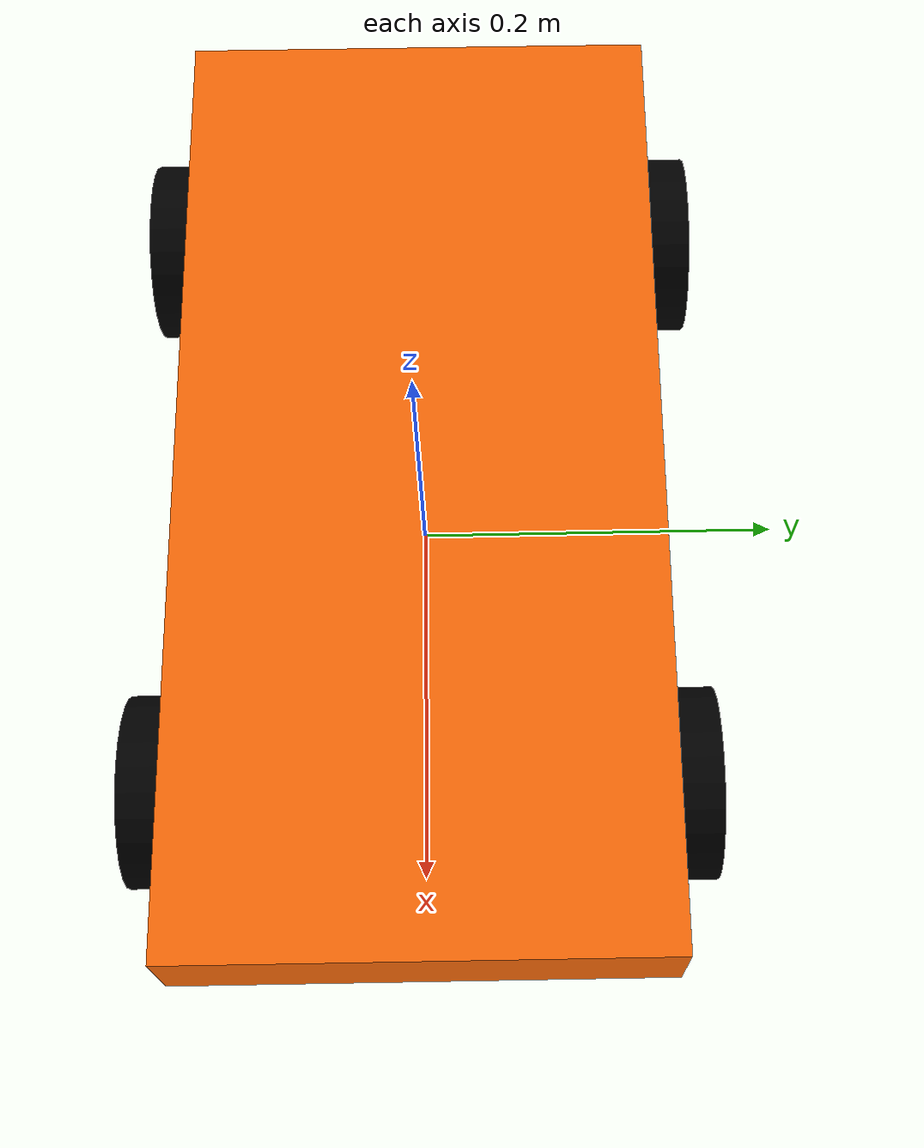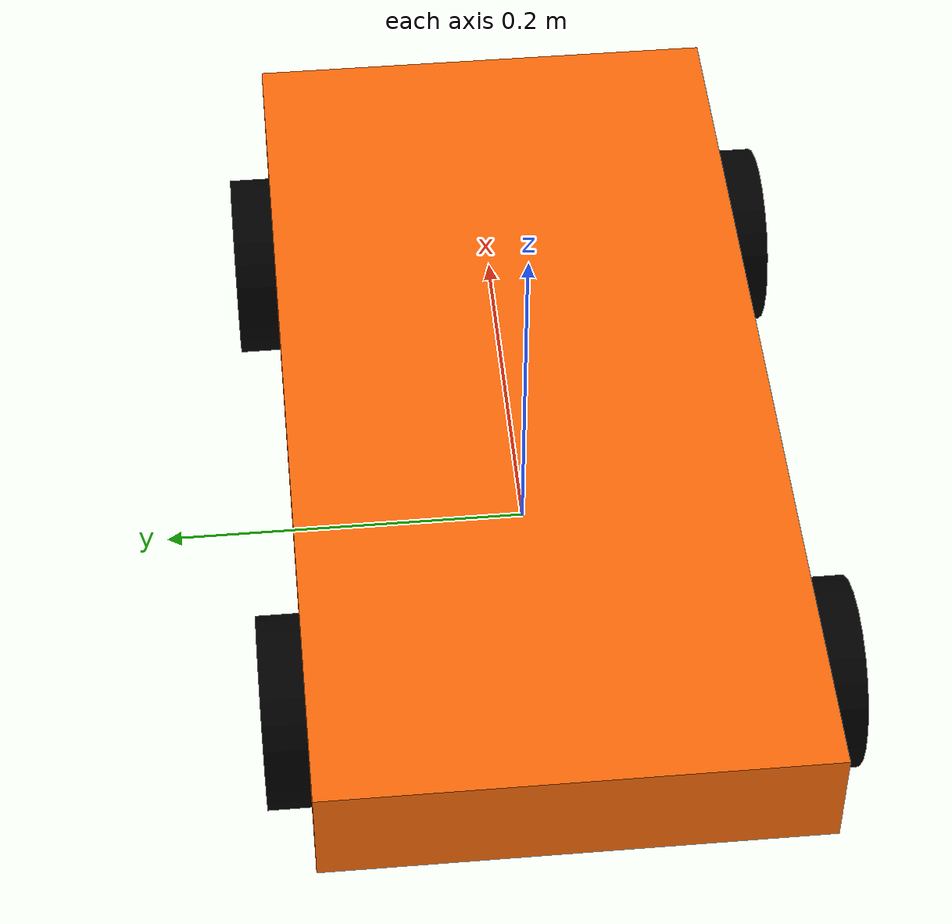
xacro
<?xml version="1.0"?>
<robot xmlns:xacro="http://www.ros.org/wiki/xacro"  name="robot">
<xacro:arg name="prefix" default="" />

 <xacro:include filename="carlikebot_description.urdf.xacro" />
  <!-- Import Rviz colors -->
  <xacro:include filename="carlikebot.materials.xacro" />
  <!-- Import carlikebot ros2_control description -->
  <xacro:include filename="carlikebot.ros2_control.xacro" />

  <xacro:carlikebot prefix="$(arg prefix)" />

  <xacro:carlikebot_ros2_control
    name="CarlikeBot" prefix="$(arg prefix)" />

</robot>

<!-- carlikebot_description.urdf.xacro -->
<robot xmlns:xacro="http://www.ros.org/wiki/xacro">

  <xacro:macro name="carlikebot" params="prefix">

  <!-- Constants for robot dimensions -->
  <xacro:property name="PI" value="3.1415926535897931"/>
  <xacro:property name="base_mass" value="4.0" /> <!-- arbitrary value for base mass -->
  <xacro:property name="base_width" value="0.260" />
  <xacro:property name="base_length" value="0.525" />
  <xacro:property name="base_height" value="0.060" />
  <xacro:property name="wheelbase" value="0.325" />
  <xacro:property name="wheel_mass" value="0.34055" /> <!-- arbitrary value for wheel mass -->
  <xacro:property name="wheel_len" value="0.045" />
  <xacro:property name="wheel_radius" value="0.05" />

  <!-- Base Link -->
  <link name="${prefix}base_link" />

  <!-- Chassis -->

  <link name="${prefix}chassis_link">
    <collision>
      <origin xyz="0 0 0" rpy="0 0 0"/>
      <geometry>
        <box size="${base_length} ${base_width} ${base_height}"/>
      </geometry>
    </collision>

    <visual>
      <origin xyz="0 0 0" rpy="0 0 0"/>
      <geometry>
        <box size="${base_length} ${base_width} ${base_height}"/>
      </geometry>
      <material name="orange"/>
    </visual>

    <inertial>
      <origin xyz="0 0 0" rpy="0 0 0"/>
      <mass value="${base_mass}"/>
        <inertia
          ixx="0.000270" ixy="0.0" ixz="0.0"
          iyy="0.000270" iyz="0.0"
          izz="0.000426"/>
      </inertial>
    </link>

  <gazebo reference="${prefix}chassis_link">
      <material>Gazebo/Orange</material>
  </gazebo>

    <joint name="${prefix}chassis_joint" type="fixed">
      <parent link="${prefix}base_link"/>
      <child link="${prefix}chassis_link"/>
      <origin xyz="0 0 ${base_height/2 + wheel_radius}" rpy="0 0 0"/>
      <axis xyz="0 0 1"/>
      <dynamics damping="0.2"/>
    </joint>

    <!-- rear wheels -->

    <!-- virtual rear wheel -->

    <link name="${prefix}virtual_rear_wheel">
      <visual>
        <origin xyz="0 0 0" rpy="${PI/2} 0 ${PI/2}"/>
        <geometry>
          <cylinder length="0.01" radius="${wheel_radius}"/>
        </geometry>
        <material name="invisible"/>
      </visual>
       <inertial>
        <origin xyz="0 0 0" rpy="${PI/2} 0 ${PI/2}"/>
        <mass value="${wheel_mass}"/>
        <inertia
          ixx="0.0001" ixy="0.0" ixz="0.0"
          iyy="0.0001" iyz="0.0"
          izz="0.0001"/>
      </inertial>
    </link>

    <joint name="${prefix}virtual_rear_wheel_joint" type="continuous">
      <parent link="${prefix}chassis_link"/>
      <child link="${prefix}virtual_rear_wheel"/>
      <origin xyz="-${wheelbase/2} 0 -${base_height/2}" rpy="0 0 ${PI/2}"/>
      <axis xyz="1 0 0"/>
      <limit effort="100.0" velocity="100.0"/>
      <dynamics damping="0.2"/>
    </joint>

    <!-- rear right wheel -->

    <link name="${prefix}rear_right_wheel">
      <collision>
        <origin xyz="0 0 0" rpy="${PI/2} 0 ${PI/2}"/>
        <geometry>
          <cylinder length="${wheel_len}" radius="${wheel_radius}"/>
        </geometry>
      </collision>

      <visual>
        <origin xyz="0 0 0" rpy="${PI/2} 0 ${PI/2}"/>
        <geometry>
          <cylinder length="${wheel_len}" radius="${wheel_radius}"/>
        </geometry>
        <material name="black"/>
      </visual>

      <inertial>
        <origin xyz="0 0 0" rpy="${PI/2} 0 ${PI/2}"/>
        <mass value="${wheel_mass}"/>
        <inertia
          ixx="0.000270" ixy="0.0" ixz="0.0"
          iyy="0.000270" iyz="0.0"
          izz="0.000426"/>
      </inertial>

    </link>

    <gazebo reference="${prefix}rear_right_wheel">
      <material>Gazebo/Black</material>
    </gazebo>

    <joint name="${prefix}rear_right_wheel_joint" type="continuous">
      <parent link="${prefix}chassis_link"/>
      <child link="${prefix}rear_right_wheel"/>
      <origin xyz="-${wheelbase/2} ${base_width/2} -${base_height/2}" rpy="0 0 ${PI/2}"/>
      <axis xyz="1 0 0"/>
      <limit effort="100.0" velocity="100.0"/>
      <dynamics damping="0.2"/>
      <mimic joint="${prefix}virtual_rear_wheel_joint" multiplier="1.0" offset="0.0"/>
    </joint>

    <!-- rear left wheel -->
    <link name="${prefix}rear_left_wheel">
        <collision>
          <origin xyz="0 0 0" rpy="${PI/2} 0 ${PI/2}"/>
          <geometry>
            <cylinder length="${wheel_len}" radius="${wheel_radius}"/>
          </geometry>
        </collision>

        <visual>
          <origin xyz="0 0 0" rpy="${PI/2} 0 ${PI/2}"/>
          <geometry>
            <cylinder length="${wheel_len}" radius="${wheel_radius}"/>
          </geometry>
          <material name="black"/>
        </visual>

        <inertial>
          <origin xyz="0 0 0" rpy="${PI/2} 0 ${PI/2}"/>
          <mass value="${wheel_mass}"/>
          <inertia
            ixx="0.000270" ixy="0.0" ixz="0.0"
            iyy="0.000270" iyz="0.0"
            izz="0.000426"/>
        </inertial>

    </link>

    <gazebo reference="${prefix}rear_left_wheel">
      <material>Gazebo/Black</material>
    </gazebo>

    <joint name="${prefix}rear_left_wheel_joint" type="continuous">
      <parent link="${prefix}chassis_link" />
      <child link="${prefix}rear_left_wheel" />
      <origin xyz="-${wheelbase/2} -${base_width/2} -${base_height/2}" rpy="0 0 ${PI/2}"/>
      <axis xyz="1 0 0"/>
      <limit effort="100.0" velocity="100.0"/>
      <dynamics damping="0.2"/>
      <mimic joint="${prefix}virtual_rear_wheel_joint" multiplier="1.0" offset="0.0"/>
    </joint>

    <!-- front wheels -->

    <!-- virtual front wheel -->

    <link name="${prefix}virtual_front_wheel">
      <visual>
        <origin xyz="0 0 0" rpy="${PI/2} 0 ${PI/2}"/>
        <geometry>
          <cylinder length="0.01" radius="${wheel_radius}"/>
        </geometry>
        <material name="invisible"/>
      </visual>
      <inertial>
        <origin xyz="0 0 0" rpy="${PI/2} 0 ${PI/2}"/>
        <mass value="${wheel_mass}"/>
        <inertia
          ixx="0.0001" ixy="0.0" ixz="0.0"
          iyy="0.0001" iyz="0.0"
          izz="0.0001"/>
      </inertial>
    </link>

    <joint name="${prefix}virtual_front_wheel_joint" type="revolute">
      <parent link="${prefix}chassis_link"/>
      <child link="${prefix}virtual_front_wheel"/>
      <origin xyz="${wheelbase/2} 0 -${base_height/2}" rpy="0 0 ${PI/2}"/>
      <axis xyz="0 0 1"/>
      <limit lower="-0.4" upper="0.4" effort="100.0" velocity="0.0"/>
      <dynamics damping="0.2"/>
    </joint>

    <!-- front right wheel -->

    <link name="${prefix}front_right_wheel">

      <collision>
        <origin xyz="0 0 0" rpy="${PI/2} 0 ${PI/2}"/>
        <geometry>
          <cylinder length="${wheel_len}" radius="${wheel_radius}"/>
        </geometry>
      </collision>

      <visual>
        <origin xyz="0 0 0" rpy="${PI/2} 0 ${PI/2}"/>
        <geometry>
          <cylinder length="${wheel_len}" radius="${wheel_radius}"/>
        </geometry>
        <material name="black"/>
      </visual>

      <inertial>
        <origin xyz="0 0 0" rpy="${PI/2} 0 ${PI/2}"/>
        <mass value="${wheel_mass}"/>
        <inertia
          ixx="0.000270" ixy="0.0" ixz="0.0"
          iyy="0.000270" iyz="0.0"
          izz="0.000426"/>
      </inertial>
    </link>
    <gazebo reference="${prefix}front_right_wheel">
      <material>Gazebo/Black</material>
    </gazebo>

    <joint name="${prefix}front_right_wheel_joint" type="revolute">
      <parent link="${prefix}chassis_link" />
      <child link="${prefix}front_right_wheel" />
      <origin xyz="${wheelbase/2} ${base_width/2} -${base_height/2}" rpy="0 0 ${PI/2}"/>
      <axis xyz="0 0 1"/>
      <limit lower="-0.4" upper="0.4" effort="100.0" velocity="0.0"/>
      <dynamics damping="0.2"/>
      <mimic joint="${prefix}virtual_front_wheel_joint" multiplier="1.0" offset="0.0"/>
    </joint>

    <!-- front left steering -->

    <link name="${prefix}front_left_wheel">
      <collision>
        <origin xyz="0 0 0" rpy="${PI/2} 0 ${PI/2}"/>
        <geometry>
          <cylinder length="${wheel_len}" radius="${wheel_radius}"/>
        </geometry>
      </collision>

      <visual>
        <origin xyz="0 0 0" rpy="${PI/2} 0 ${PI/2}"/>
        <geometry>
          <cylinder length="${wheel_len}" radius="${wheel_radius}"/>
        </geometry>
        <material name="black"/>
      </visual>

      <inertial>
        <origin xyz="0 0 0" rpy="${PI/2} 0 ${PI/2}"/>
        <mass value="${wheel_mass}"/>
        <inertia
          ixx="0.000270" ixy="0.0" ixz="0.0"
          iyy="0.000270" iyz="0.0"
          izz="0.000426"/>
      </inertial>

    </link>

    <gazebo reference="${prefix}front_left_wheel">
      <material>Gazebo/Black</material>
    </gazebo>

    <joint name="${prefix}front_left_wheel_joint" type="revolute">
      <parent link="${prefix}chassis_link" />
      <child link="${prefix}front_left_wheel" />
      <origin xyz="${wheelbase/2} -${base_width/2} -${base_height/2}" rpy="0 0 ${PI/2}"/>
      <axis xyz="0 0 1"/>
      <limit lower="-0.4" upper="0.4" effort="100.0" velocity="0.0"/>
      <dynamics damping="0.2"/>
      <mimic joint="${prefix}virtual_front_wheel_joint" multiplier="1.0" offset="0.0"/>
    </joint>

  </xacro:macro>

</robot>

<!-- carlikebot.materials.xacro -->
<!--
Copied from ROS1 example:
https://github.com/ros-simulation/gazebo_ros_demos/blob/kinetic-devel/rrbot_description/urdf/materials.xacro
-->
<robot>

  <material name="black">
    <color rgba="0.0 0.0 0.0 1.0"/>
  </material>

  <material name="blue">
    <color rgba="0.0 0.0 0.8 1.0"/>
  </material>

  <material name="green">
    <color rgba="0.0 0.8 0.0 1.0"/>
  </material>

  <material name="grey">
    <color rgba="0.2 0.2 0.2 1.0"/>
  </material>

  <material name="orange">
    <color rgba="${255/255} ${108/255} ${10/255} 1.0"/>
  </material>

  <material name="brown">
    <color rgba="${222/255} ${207/255} ${195/255} 1.0"/>
  </material>

  <material name="red">
    <color rgba="0.8 0.0 0.0 1.0"/>
  </material>

  <material name="white">
    <color rgba="1.0 1.0 1.0 1.0"/>
  </material>

  <material name="invisible">
    <color rgba="0.0 0.0 0.0 0.0"/>
  </material>

</robot>
